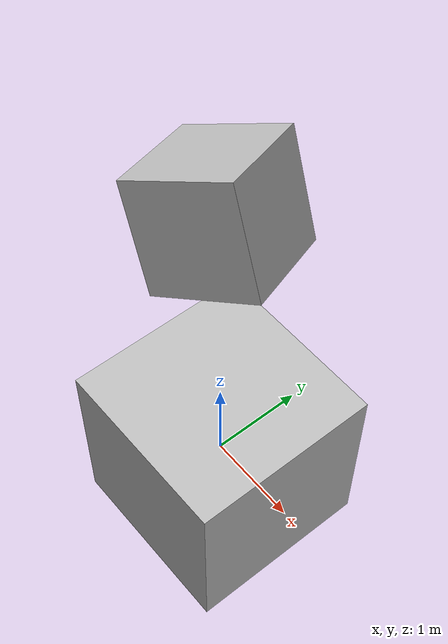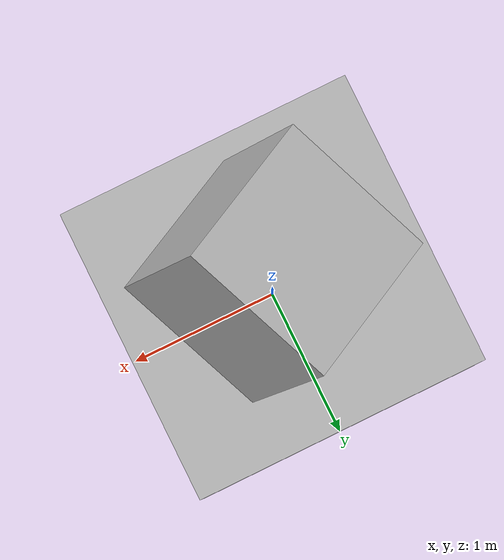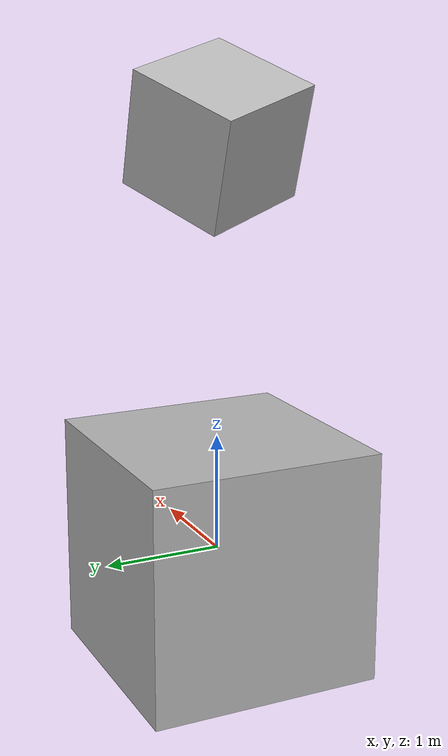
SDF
<?xml version="1.0" ?>
<sdf version="1.4">
  <world name="default">
    <include><uri>model://sun</uri></include>
    <physics type="ode">
      <gravity>0 0 -10.0</gravity>
      <ode>
        <solver>
          <type>quick</type>
          <dt>0.001</dt>
          <iters>10</iters>
          <sor>1.3</sor>
        </solver>
        <constraints>
          <cfm>0.0</cfm>
          <erp>0.2</erp>
          <contact_max_correcting_vel>100.0</contact_max_correcting_vel>
          <contact_surface_layer>0.0</contact_surface_layer>
        </constraints>
      </ode>
    </physics>
    <model name="model_cube">
      <pose>0 0 3.5 1 2 3</pose>
      <link name="cube">
	<pose>0 0 0 0 0 0</pose>
        <inertial>
          <inertia>
            <ixx>1</ixx>
            <ixy>0</ixy>
            <ixz>0</ixz>
            <iyy>1</iyy>
            <iyz>0</iyz>
            <izz>1</izz>
          </inertia>
          <mass>1.0</mass>
        </inertial>
        <visual name="visual">
          <pose>0 0 0 0 0 0</pose>
          <geometry>
            <box>
              <size>1 1 1</size>
            </box>
          </geometry>
          <material>
            <script>Gazebo/WoodPallet</script>
          </material>
        </visual>
	<collision name="coll_cube">
          <pose>0 0 0 0 0 0</pose>
          <max_contacts>250</max_contacts>
          <geometry>
            <box>
              <size>1 1 1</size>
            </box>
          </geometry>
          <surface>
            <friction>
              <ode>
                <mu>0.5</mu>
                <mu2>0.2</mu2>
                <fdir1>1 0 0</fdir1>
                <slip1>0</slip1>
                <slip2>0</slip2>
              </ode>
            </friction>
            <bounce>
              <restitution_coefficient>0</restitution_coefficient>
              <threshold>1000000</threshold>
            </bounce>
            <contact>
              <ode>
                <soft_cfm>0.0</soft_cfm>
                <soft_erp>0.2</soft_erp>
                <kp>1000000000000000</kp>
                <kd>10000000000000</kd>
                <max_vel>100</max_vel>
                <min_depth>0</min_depth>
              </ode>
            </contact>
          </surface>
          <laser_retro>100</laser_retro>
        </collision>
      </link>
    </model>
    <model name="model_ground">
      <static>true</static>
      <pose>0 0 0 0 0 0</pose>
      <link name="ground">
	<pose>0 0 0 0 0 0</pose>
        <inertial>
          <inertia>
            <ixx>1</ixx>
            <ixy>0</ixy>
            <ixz>0</ixz>
            <iyy>1</iyy>
            <iyz>0</iyz>
            <izz>1</izz>
          </inertia>
          <mass>10.0</mass>
        </inertial>
        <visual name="visual">
          <pose>0 0 0 0 0 0</pose>
          <geometry>
            <box>
              <size>2 2 2</size>
            </box>
          </geometry>
          <material>
            <script>Gazebo/WoodPallet</script>
          </material>
        </visual>
        <collision name="coll_ground">
          <pose>0 0 0 0 0 0</pose>
          <max_contacts>250</max_contacts>
          <geometry>
            <box>
              <size>2 2 2</size>
            </box>
          </geometry>
          <surface>
            <friction>
              <ode>
                <mu>0.5</mu>
                <mu2>0.2</mu2>
                <fdir1>1 0 0</fdir1>
                <slip1>0</slip1>
                <slip2>0</slip2>
              </ode>
            </friction>
            <bounce>
              <restitution_coefficient>0</restitution_coefficient>
              <threshold>1000000</threshold>
            </bounce>
            <contact>
              <ode>
                <soft_cfm>0.0</soft_cfm>
                <soft_erp>0.2</soft_erp>
                <kp>1000000000000000</kp>
                <kd>10000000000000</kd>
                <max_vel>100</max_vel>
                <min_depth>0</min_depth>
              </ode>
            </contact>
          </surface>
          <laser_retro>100</laser_retro>
        </collision>
      </link>
    </model>
    <light type="directional" name="sun">
      <pose>0 0 10 0 0 0</pose>
      <diffuse>.8 .8 .8 1</diffuse>
      <specular>.1 .1 .1 1</specular>
      <attenuation>
        <range>10</range>
        <linear>0.01</linear>
        <constant>0.8</constant>
        <quadratic>0.0</quadratic>
      </attenuation>
      <direction>0 .5 -.5</direction>
      <cast_shadows>true</cast_shadows>
    </light>
  </world>
</sdf>
